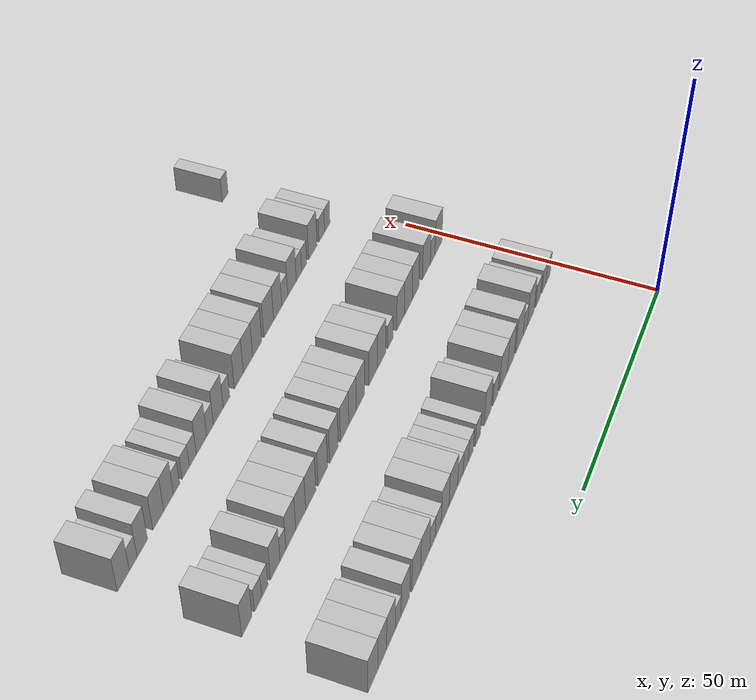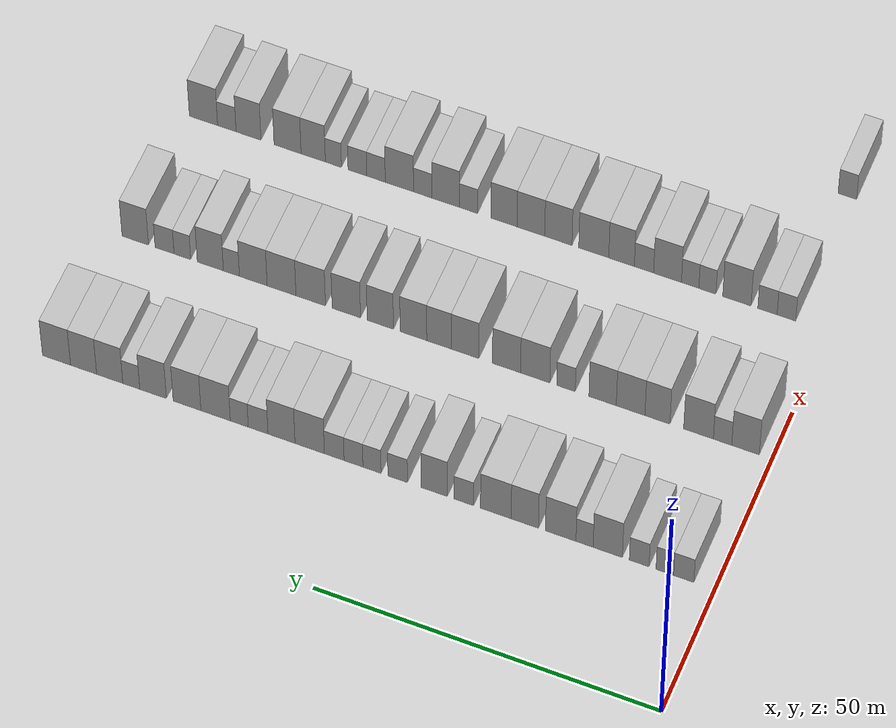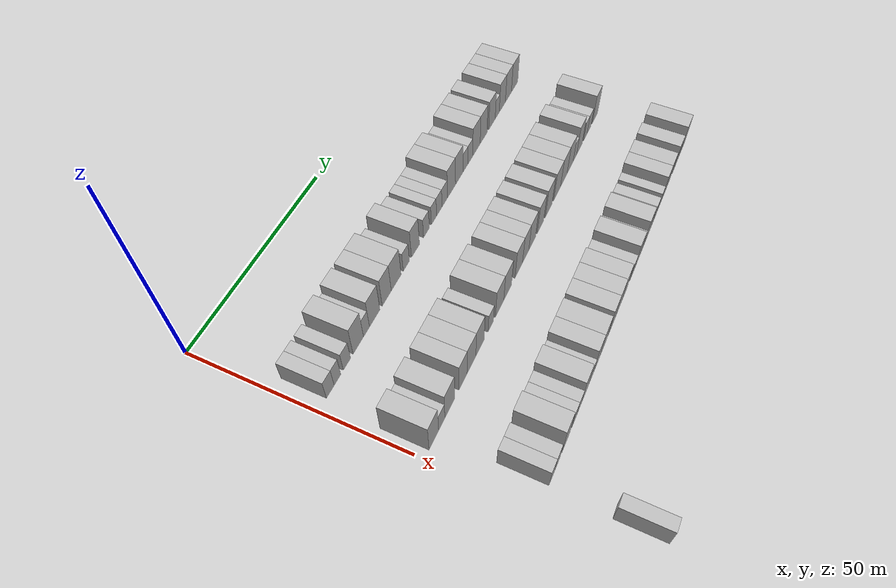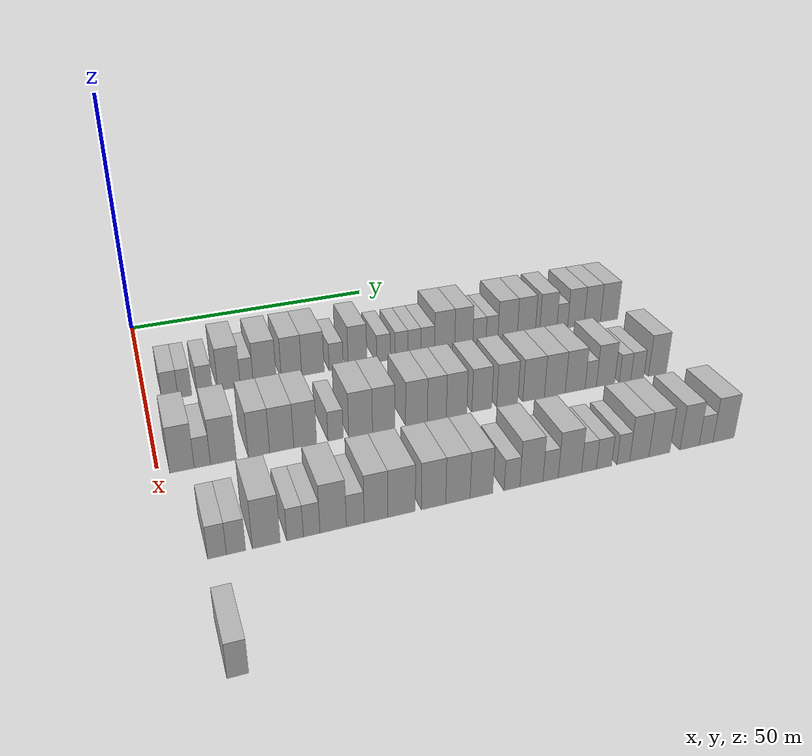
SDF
<sdf version="1.6">
 <world name="default">
  <model name="building_100">
   <static>1</static>
   <pose>25.0000 4.5090 0 0.000000 0.000000 0.000000</pose>
   <link name="link">
    <pose>0 0 3.00 0 0 0</pose>
    <collision name="collision"><geometry><box><size>10.0000 2.9204 6.0000</size></box></geometry></collision>
    <visual name="visual">
     <cast_shadows>0</cast_shadows>
     <geometry><box><size>10.0000 2.9204 6.0000</size></box></geometry>
     <material>
      <script>
       <uri>model://HANNAS_wall/materials/scripts</uri>
       <uri>model://HANNAS_wall/materials/textures</uri>
       <name>vrc/HANNAS_wall</name>
      </script>
     </material>
    </visual>
   </link>
  </model>
  <model name="building_101">
   <static>1</static>
   <pose>25.0000 7.2331 0 0.000000 0.000000 0.000000</pose>
   <link name="link">
    <pose>0 0 3.00 0 0 0</pose>
    <collision name="collision"><geometry><box><size>10.0000 2.5277 6.0000</size></box></geometry></collision>
    <visual name="visual">
     <cast_shadows>0</cast_shadows>
     <geometry><box><size>10.0000 2.5277 6.0000</size></box></geometry>
     <material>
      <script>
       <uri>model://HANNAS_wall/materials/scripts</uri>
       <uri>model://HANNAS_wall/materials/textures</uri>
       <name>vrc/HANNAS_wall</name>
      </script>
     </material>
    </visual>
   </link>
  </model>
  <model name="building_102">
   <static>1</static>
   <pose>25.0000 10.9208 0 0.000000 0.000000 0.000000</pose>
   <link name="link">
    <pose>0 0 3.00 0 0 0</pose>
    <collision name="collision"><geometry><box><size>10.0000 2.8477 6.0000</size></box></geometry></collision>
    <visual name="visual">
     <cast_shadows>0</cast_shadows>
     <geometry><box><size>10.0000 2.8477 6.0000</size></box></geometry>
     <material>
      <script>
       <uri>model://HANNAS_wall/materials/scripts</uri>
       <uri>model://HANNAS_wall/materials/textures</uri>
       <name>vrc/HANNAS_wall</name>
      </script>
     </material>
    </visual>
   </link>
  </model>
  <model name="building_103">
   <static>1</static>
   <pose>25.0000 15.4575 0 0.000000 0.000000 0.000000</pose>
   <link name="link">
    <pose>0 0 4.50 0 0 0</pose>
    <collision name="collision"><geometry><box><size>10.0000 4.2256 9.0000</size></box></geometry></collision>
    <visual name="visual">
     <cast_shadows>0</cast_shadows>
     <geometry><box><size>10.0000 4.2256 9.0000</size></box></geometry>
     <material>
      <script>
       <uri>model://HANNAS_wall/materials/scripts</uri>
       <uri>model://HANNAS_wall/materials/textures</uri>
       <name>vrc/HANNAS_wall</name>
      </script>
     </material>
    </visual>
   </link>
  </model>
  <model name="building_104">
   <static>1</static>
   <pose>25.0000 18.8111 0 0.000000 0.000000 0.000000</pose>
   <link name="link">
    <pose>0 0 3.00 0 0 0</pose>
    <collision name="collision"><geometry><box><size>10.0000 2.4817 6.0000</size></box></geometry></collision>
    <visual name="visual">
     <cast_shadows>0</cast_shadows>
     <geometry><box><size>10.0000 2.4817 6.0000</size></box></geometry>
     <material>
      <script>
       <uri>model://HANNAS_wall/materials/scripts</uri>
       <uri>model://HANNAS_wall/materials/textures</uri>
       <name>vrc/HANNAS_wall</name>
      </script>
     </material>
    </visual>
   </link>
  </model>
  <model name="building_105">
   <static>1</static>
   <pose>25.0000 22.2630 0 0.000000 0.000000 0.000000</pose>
   <link name="link">
    <pose>0 0 4.50 0 0 0</pose>
    <collision name="collision"><geometry><box><size>10.0000 4.4220 9.0000</size></box></geometry></collision>
    <visual name="visual">
     <cast_shadows>0</cast_shadows>
     <geometry><box><size>10.0000 4.4220 9.0000</size></box></geometry>
     <material>
      <script>
       <uri>model://HANNAS_wall/materials/scripts</uri>
       <uri>model://HANNAS_wall/materials/textures</uri>
       <name>vrc/HANNAS_wall</name>
      </script>
     </material>
    </visual>
   </link>
  </model>
  <model name="building_106">
   <static>1</static>
   <pose>25.0000 27.4596 0 0.000000 0.000000 0.000000</pose>
   <link name="link">
    <pose>0 0 4.50 0 0 0</pose>
    <collision name="collision"><geometry><box><size>10.0000 3.9713 9.0000</size></box></geometry></collision>
    <visual name="visual">
     <cast_shadows>0</cast_shadows>
     <geometry><box><size>10.0000 3.9713 9.0000</size></box></geometry>
     <material>
      <script>
       <uri>model://HANNAS_wall/materials/scripts</uri>
       <uri>model://HANNAS_wall/materials/textures</uri>
       <name>vrc/HANNAS_wall</name>
      </script>
     </material>
    </visual>
   </link>
  </model>
  <model name="building_107">
   <static>1</static>
   <pose>25.0000 31.6769 0 0.000000 0.000000 0.000000</pose>
   <link name="link">
    <pose>0 0 4.50 0 0 0</pose>
    <collision name="collision"><geometry><box><size>10.0000 4.4634 9.0000</size></box></geometry></collision>
    <visual name="visual">
     <cast_shadows>0</cast_shadows>
     <geometry><box><size>10.0000 4.4634 9.0000</size></box></geometry>
     <material>
      <script>
       <uri>model://HANNAS_wall/materials/scripts</uri>
       <uri>model://HANNAS_wall/materials/textures</uri>
       <name>vrc/HANNAS_wall</name>
      </script>
     </material>
    </visual>
   </link>
  </model>
  <model name="building_108">
   <static>1</static>
   <pose>25.0000 36.3281 0 0.000000 0.000000 0.000000</pose>
   <link name="link">
    <pose>0 0 3.00 0 0 0</pose>
    <collision name="collision"><geometry><box><size>10.0000 2.8389 6.0000</size></box></geometry></collision>
    <visual name="visual">
     <cast_shadows>0</cast_shadows>
     <geometry><box><size>10.0000 2.8389 6.0000</size></box></geometry>
     <material>
      <script>
       <uri>model://HANNAS_wall/materials/scripts</uri>
       <uri>model://HANNAS_wall/materials/textures</uri>
       <name>vrc/HANNAS_wall</name>
      </script>
     </material>
    </visual>
   </link>
  </model>
  <model name="building_109">
   <static>1</static>
   <pose>25.0000 40.6622 0 0.000000 0.000000 0.000000</pose>
   <link name="link">
    <pose>0 0 4.50 0 0 0</pose>
    <collision name="collision"><geometry><box><size>10.0000 3.8293 9.0000</size></box></geometry></collision>
    <visual name="visual">
     <cast_shadows>0</cast_shadows>
     <geometry><box><size>10.0000 3.8293 9.0000</size></box></geometry>
     <material>
      <script>
       <uri>model://HANNAS_wall/materials/scripts</uri>
       <uri>model://HANNAS_wall/materials/textures</uri>
       <name>vrc/HANNAS_wall</name>
      </script>
     </material>
    </visual>
   </link>
  </model>
  <model name="building_110">
   <static>1</static>
   <pose>25.0000 46.0149 0 0.000000 0.000000 0.000000</pose>
   <link name="link">
    <pose>0 0 3.00 0 0 0</pose>
    <collision name="collision"><geometry><box><size>10.0000 2.8761 6.0000</size></box></geometry></collision>
    <visual name="visual">
     <cast_shadows>0</cast_shadows>
     <geometry><box><size>10.0000 2.8761 6.0000</size></box></geometry>
     <material>
      <script>
       <uri>model://HANNAS_wall/materials/scripts</uri>
       <uri>model://HANNAS_wall/materials/textures</uri>
       <name>vrc/HANNAS_wall</name>
      </script>
     </material>
    </visual>
   </link>
  </model>
  <model name="building_111">
   <static>1</static>
   <pose>25.0000 49.7838 0 0.000000 0.000000 0.000000</pose>
   <link name="link">
    <pose>0 0 3.00 0 0 0</pose>
    <collision name="collision"><geometry><box><size>10.0000 2.6616 6.0000</size></box></geometry></collision>
    <visual name="visual">
     <cast_shadows>0</cast_shadows>
     <geometry><box><size>10.0000 2.6616 6.0000</size></box></geometry>
     <material>
      <script>
       <uri>model://HANNAS_wall/materials/scripts</uri>
       <uri>model://HANNAS_wall/materials/textures</uri>
       <name>vrc/HANNAS_wall</name>
      </script>
     </material>
    </visual>
   </link>
  </model>
  <model name="building_112">
   <static>1</static>
   <pose>25.0000 52.5020 0 0.000000 0.000000 0.000000</pose>
   <link name="link">
    <pose>0 0 3.00 0 0 0</pose>
    <collision name="collision"><geometry><box><size>10.0000 2.7749 6.0000</size></box></geometry></collision>
    <visual name="visual">
     <cast_shadows>0</cast_shadows>
     <geometry><box><size>10.0000 2.7749 6.0000</size></box></geometry>
     <material>
      <script>
       <uri>model://HANNAS_wall/materials/scripts</uri>
       <uri>model://HANNAS_wall/materials/textures</uri>
       <name>vrc/HANNAS_wall</name>
      </script>
     </material>
    </visual>
   </link>
  </model>
  <model name="building_113">
   <static>1</static>
   <pose>25.0000 55.3369 0 0.000000 0.000000 0.000000</pose>
   <link name="link">
    <pose>0 0 3.00 0 0 0</pose>
    <collision name="collision"><geometry><box><size>10.0000 2.8949 6.0000</size></box></geometry></collision>
    <visual name="visual">
     <cast_shadows>0</cast_shadows>
     <geometry><box><size>10.0000 2.8949 6.0000</size></box></geometry>
     <material>
      <script>
       <uri>model://HANNAS_wall/materials/scripts</uri>
       <uri>model://HANNAS_wall/materials/textures</uri>
       <name>vrc/HANNAS_wall</name>
      </script>
     </material>
    </visual>
   </link>
  </model>
  <model name="building_114">
   <static>1</static>
   <pose>25.0000 58.9504 0 0.000000 0.000000 0.000000</pose>
   <link name="link">
    <pose>0 0 4.50 0 0 0</pose>
    <collision name="collision"><geometry><box><size>10.0000 4.3320 9.0000</size></box></geometry></collision>
    <visual name="visual">
     <cast_shadows>0</cast_shadows>
     <geometry><box><size>10.0000 4.3320 9.0000</size></box></geometry>
     <material>
      <script>
       <uri>model://HANNAS_wall/materials/scripts</uri>
       <uri>model://HANNAS_wall/materials/textures</uri>
       <name>vrc/HANNAS_wall</name>
      </script>
     </material>
    </visual>
   </link>
  </model>
  <model name="building_115">
   <static>1</static>
   <pose>25.0000 63.1136 0 0.000000 0.000000 0.000000</pose>
   <link name="link">
    <pose>0 0 4.50 0 0 0</pose>
    <collision name="collision"><geometry><box><size>10.0000 3.9944 9.0000</size></box></geometry></collision>
    <visual name="visual">
     <cast_shadows>0</cast_shadows>
     <geometry><box><size>10.0000 3.9944 9.0000</size></box></geometry>
     <material>
      <script>
       <uri>model://HANNAS_wall/materials/scripts</uri>
       <uri>model://HANNAS_wall/materials/textures</uri>
       <name>vrc/HANNAS_wall</name>
      </script>
     </material>
    </visual>
   </link>
  </model>
  <model name="building_116">
   <static>1</static>
   <pose>25.0000 66.5701 0 0.000000 0.000000 0.000000</pose>
   <link name="link">
    <pose>0 0 3.00 0 0 0</pose>
    <collision name="collision"><geometry><box><size>10.0000 2.9185 6.0000</size></box></geometry></collision>
    <visual name="visual">
     <cast_shadows>0</cast_shadows>
     <geometry><box><size>10.0000 2.9185 6.0000</size></box></geometry>
     <material>
      <script>
       <uri>model://HANNAS_wall/materials/scripts</uri>
       <uri>model://HANNAS_wall/materials/textures</uri>
       <name>vrc/HANNAS_wall</name>
      </script>
     </material>
    </visual>
   </link>
  </model>
  <model name="building_117">
   <static>1</static>
   <pose>25.0000 69.3578 0 0.000000 0.000000 0.000000</pose>
   <link name="link">
    <pose>0 0 3.00 0 0 0</pose>
    <collision name="collision"><geometry><box><size>10.0000 2.6570 6.0000</size></box></geometry></collision>
    <visual name="visual">
     <cast_shadows>0</cast_shadows>
     <geometry><box><size>10.0000 2.6570 6.0000</size></box></geometry>
     <material>
      <script>
       <uri>model://HANNAS_wall/materials/scripts</uri>
       <uri>model://HANNAS_wall/materials/textures</uri>
       <name>vrc/HANNAS_wall</name>
      </script>
     </material>
    </visual>
   </link>
  </model>
  <model name="building_118">
   <static>1</static>
   <pose>25.0000 72.8697 0 0.000000 0.000000 0.000000</pose>
   <link name="link">
    <pose>0 0 4.50 0 0 0</pose>
    <collision name="collision"><geometry><box><size>10.0000 4.3668 9.0000</size></box></geometry></collision>
    <visual name="visual">
     <cast_shadows>0</cast_shadows>
     <geometry><box><size>10.0000 4.3668 9.0000</size></box></geometry>
     <material>
      <script>
       <uri>model://HANNAS_wall/materials/scripts</uri>
       <uri>model://HANNAS_wall/materials/textures</uri>
       <name>vrc/HANNAS_wall</name>
      </script>
     </material>
    </visual>
   </link>
  </model>
  <model name="building_119">
   <static>1</static>
   <pose>25.0000 77.1169 0 0.000000 0.000000 0.000000</pose>
   <link name="link">
    <pose>0 0 4.50 0 0 0</pose>
    <collision name="collision"><geometry><box><size>10.0000 4.1276 9.0000</size></box></geometry></collision>
    <visual name="visual">
     <cast_shadows>0</cast_shadows>
     <geometry><box><size>10.0000 4.1276 9.0000</size></box></geometry>
     <material>
      <script>
       <uri>model://HANNAS_wall/materials/scripts</uri>
       <uri>model://HANNAS_wall/materials/textures</uri>
       <name>vrc/HANNAS_wall</name>
      </script>
     </material>
    </visual>
   </link>
  </model>
  <model name="building_120">
   <static>1</static>
   <pose>25.0000 82.1685 0 0.000000 0.000000 0.000000</pose>
   <link name="link">
    <pose>0 0 4.50 0 0 0</pose>
    <collision name="collision"><geometry><box><size>10.0000 3.9755 9.0000</size></box></geometry></collision>
    <visual name="visual">
     <cast_shadows>0</cast_shadows>
     <geometry><box><size>10.0000 3.9755 9.0000</size></box></geometry>
     <material>
      <script>
       <uri>model://HANNAS_wall/materials/scripts</uri>
       <uri>model://HANNAS_wall/materials/textures</uri>
       <name>vrc/HANNAS_wall</name>
      </script>
     </material>
    </visual>
   </link>
  </model>
  <model name="building_121">
   <static>1</static>
   <pose>25.0000 85.4232 0 0.000000 0.000000 0.000000</pose>
   <link name="link">
    <pose>0 0 3.00 0 0 0</pose>
    <collision name="collision"><geometry><box><size>10.0000 2.5340 6.0000</size></box></geometry></collision>
    <visual name="visual">
     <cast_shadows>0</cast_shadows>
     <geometry><box><size>10.0000 2.5340 6.0000</size></box></geometry>
     <material>
      <script>
       <uri>model://HANNAS_wall/materials/scripts</uri>
       <uri>model://HANNAS_wall/materials/textures</uri>
       <name>vrc/HANNAS_wall</name>
      </script>
     </material>
    </visual>
   </link>
  </model>
  <model name="building_122">
   <static>1</static>
   <pose>25.0000 88.6442 0 0.000000 0.000000 0.000000</pose>
   <link name="link">
    <pose>0 0 4.50 0 0 0</pose>
    <collision name="collision"><geometry><box><size>10.0000 3.9080 9.0000</size></box></geometry></collision>
    <visual name="visual">
     <cast_shadows>0</cast_shadows>
     <geometry><box><size>10.0000 3.9080 9.0000</size></box></geometry>
     <material>
      <script>
       <uri>model://HANNAS_wall/materials/scripts</uri>
       <uri>model://HANNAS_wall/materials/textures</uri>
       <name>vrc/HANNAS_wall</name>
      </script>
     </material>
    </visual>
   </link>
  </model>
  <model name="building_123">
   <static>1</static>
   <pose>25.0000 92.5504 0 0.000000 0.000000 0.000000</pose>
   <link name="link">
    <pose>0 0 4.50 0 0 0</pose>
    <collision name="collision"><geometry><box><size>10.0000 3.9043 9.0000</size></box></geometry></collision>
    <visual name="visual">
     <cast_shadows>0</cast_shadows>
     <geometry><box><size>10.0000 3.9043 9.0000</size></box></geometry>
     <material>
      <script>
       <uri>model://HANNAS_wall/materials/scripts</uri>
       <uri>model://HANNAS_wall/materials/textures</uri>
       <name>vrc/HANNAS_wall</name>
      </script>
     </material>
    </visual>
   </link>
  </model>
  <model name="building_124">
   <static>1</static>
   <pose>25.0000 96.6010 0 0.000000 0.000000 0.000000</pose>
   <link name="link">
    <pose>0 0 4.50 0 0 0</pose>
    <collision name="collision"><geometry><box><size>10.0000 4.1969 9.0000</size></box></geometry></collision>
    <visual name="visual">
     <cast_shadows>0</cast_shadows>
     <geometry><box><size>10.0000 4.1969 9.0000</size></box></geometry>
     <material>
      <script>
       <uri>model://HANNAS_wall/materials/scripts</uri>
       <uri>model://HANNAS_wall/materials/textures</uri>
       <name>vrc/HANNAS_wall</name>
      </script>
     </material>
    </visual>
   </link>
  </model>
  <model name="building_302">
   <static>1</static>
   <pose>47.0000 3.9510 0 0.000000 0.000000 0.000000</pose>
   <link name="link">
    <pose>0 0 4.50 0 0 0</pose>
    <collision name="collision"><geometry><box><size>10.0000 4.0161 9.0000</size></box></geometry></collision>
    <visual name="visual">
     <cast_shadows>0</cast_shadows>
     <geometry><box><size>10.0000 4.0161 9.0000</size></box></geometry>
     <material>
      <script>
       <uri>model://HANNAS_wall/materials/scripts</uri>
       <uri>model://HANNAS_wall/materials/textures</uri>
       <name>vrc/HANNAS_wall</name>
      </script>
     </material>
    </visual>
   </link>
  </model>
  <model name="building_303">
   <static>1</static>
   <pose>47.0000 7.2938 0 0.000000 0.000000 0.000000</pose>
   <link name="link">
    <pose>0 0 3.00 0 0 0</pose>
    <collision name="collision"><geometry><box><size>10.0000 2.6695 6.0000</size></box></geometry></collision>
    <visual name="visual">
     <cast_shadows>0</cast_shadows>
     <geometry><box><size>10.0000 2.6695 6.0000</size></box></geometry>
     <material>
      <script>
       <uri>model://HANNAS_wall/materials/scripts</uri>
       <uri>model://HANNAS_wall/materials/textures</uri>
       <name>vrc/HANNAS_wall</name>
      </script>
     </material>
    </visual>
   </link>
  </model>
  <model name="building_304">
   <static>1</static>
   <pose>47.0000 10.7909 0 0.000000 0.000000 0.000000</pose>
   <link name="link">
    <pose>0 0 4.50 0 0 0</pose>
    <collision name="collision"><geometry><box><size>10.0000 4.3245 9.0000</size></box></geometry></collision>
    <visual name="visual">
     <cast_shadows>0</cast_shadows>
     <geometry><box><size>10.0000 4.3245 9.0000</size></box></geometry>
     <material>
      <script>
       <uri>model://HANNAS_wall/materials/scripts</uri>
       <uri>model://HANNAS_wall/materials/textures</uri>
       <name>vrc/HANNAS_wall</name>
      </script>
     </material>
    </visual>
   </link>
  </model>
  <model name="building_305">
   <static>1</static>
   <pose>47.0000 16.7808 0 0.000000 0.000000 0.000000</pose>
   <link name="link">
    <pose>0 0 4.50 0 0 0</pose>
    <collision name="collision"><geometry><box><size>10.0000 3.6554 9.0000</size></box></geometry></collision>
    <visual name="visual">
     <cast_shadows>0</cast_shadows>
     <geometry><box><size>10.0000 3.6554 9.0000</size></box></geometry>
     <material>
      <script>
       <uri>model://HANNAS_wall/materials/scripts</uri>
       <uri>model://HANNAS_wall/materials/textures</uri>
       <name>vrc/HANNAS_wall</name>
      </script>
     </material>
    </visual>
   </link>
  </model>
  <model name="building_306">
   <static>1</static>
   <pose>47.0000 20.7037 0 0.000000 0.000000 0.000000</pose>
   <link name="link">
    <pose>0 0 4.50 0 0 0</pose>
    <collision name="collision"><geometry><box><size>10.0000 4.1902 9.0000</size></box></geometry></collision>
    <visual name="visual">
     <cast_shadows>0</cast_shadows>
     <geometry><box><size>10.0000 4.1902 9.0000</size></box></geometry>
     <material>
      <script>
       <uri>model://HANNAS_wall/materials/scripts</uri>
       <uri>model://HANNAS_wall/materials/textures</uri>
       <name>vrc/HANNAS_wall</name>
      </script>
     </material>
    </visual>
   </link>
  </model>
  <model name="building_307">
   <static>1</static>
   <pose>47.0000 24.8076 0 0.000000 0.000000 0.000000</pose>
   <link name="link">
    <pose>0 0 4.50 0 0 0</pose>
    <collision name="collision"><geometry><box><size>10.0000 4.0177 9.0000</size></box></geometry></collision>
    <visual name="visual">
     <cast_shadows>0</cast_shadows>
     <geometry><box><size>10.0000 4.0177 9.0000</size></box></geometry>
     <material>
      <script>
       <uri>model://HANNAS_wall/materials/scripts</uri>
       <uri>model://HANNAS_wall/materials/textures</uri>
       <name>vrc/HANNAS_wall</name>
      </script>
     </material>
    </visual>
   </link>
  </model>
  <model name="building_308">
   <static>1</static>
   <pose>47.0000 30.1823 0 0.000000 0.000000 0.000000</pose>
   <link name="link">
    <pose>0 0 3.00 0 0 0</pose>
    <collision name="collision"><geometry><box><size>10.0000 2.7318 6.0000</size></box></geometry></collision>
    <visual name="visual">
     <cast_shadows>0</cast_shadows>
     <geometry><box><size>10.0000 2.7318 6.0000</size></box></geometry>
     <material>
      <script>
       <uri>model://HANNAS_wall/materials/scripts</uri>
       <uri>model://HANNAS_wall/materials/textures</uri>
       <name>vrc/HANNAS_wall</name>
      </script>
     </material>
    </visual>
   </link>
  </model>
  <model name="building_309">
   <static>1</static>
   <pose>47.0000 34.7094 0 0.000000 0.000000 0.000000</pose>
   <link name="link">
    <pose>0 0 4.50 0 0 0</pose>
    <collision name="collision"><geometry><box><size>10.0000 4.3224 9.0000</size></box></geometry></collision>
    <visual name="visual">
     <cast_shadows>0</cast_shadows>
     <geometry><box><size>10.0000 4.3224 9.0000</size></box></geometry>
     <material>
      <script>
       <uri>model://HANNAS_wall/materials/scripts</uri>
       <uri>model://HANNAS_wall/materials/textures</uri>
       <name>vrc/HANNAS_wall</name>
      </script>
     </material>
    </visual>
   </link>
  </model>
  <model name="building_310">
   <static>1</static>
   <pose>47.0000 38.9401 0 0.000000 0.000000 0.000000</pose>
   <link name="link">
    <pose>0 0 4.50 0 0 0</pose>
    <collision name="collision"><geometry><box><size>10.0000 4.1390 9.0000</size></box></geometry></collision>
    <visual name="visual">
     <cast_shadows>0</cast_shadows>
     <geometry><box><size>10.0000 4.1390 9.0000</size></box></geometry>
     <material>
      <script>
       <uri>model://HANNAS_wall/materials/scripts</uri>
       <uri>model://HANNAS_wall/materials/textures</uri>
       <name>vrc/HANNAS_wall</name>
      </script>
     </material>
    </visual>
   </link>
  </model>
  <model name="building_311">
   <static>1</static>
   <pose>47.0000 45.0663 0 0.000000 0.000000 0.000000</pose>
   <link name="link">
    <pose>0 0 4.50 0 0 0</pose>
    <collision name="collision"><geometry><box><size>10.0000 4.1134 9.0000</size></box></geometry></collision>
    <visual name="visual">
     <cast_shadows>0</cast_shadows>
     <geometry><box><size>10.0000 4.1134 9.0000</size></box></geometry>
     <material>
      <script>
       <uri>model://HANNAS_wall/materials/scripts</uri>
       <uri>model://HANNAS_wall/materials/textures</uri>
       <name>vrc/HANNAS_wall</name>
      </script>
     </material>
    </visual>
   </link>
  </model>
  <model name="building_312">
   <static>1</static>
   <pose>47.0000 48.9343 0 0.000000 0.000000 0.000000</pose>
   <link name="link">
    <pose>0 0 4.50 0 0 0</pose>
    <collision name="collision"><geometry><box><size>10.0000 3.6227 9.0000</size></box></geometry></collision>
    <visual name="visual">
     <cast_shadows>0</cast_shadows>
     <geometry><box><size>10.0000 3.6227 9.0000</size></box></geometry>
     <material>
      <script>
       <uri>model://HANNAS_wall/materials/scripts</uri>
       <uri>model://HANNAS_wall/materials/textures</uri>
       <name>vrc/HANNAS_wall</name>
      </script>
     </material>
    </visual>
   </link>
  </model>
  <model name="building_313">
   <static>1</static>
   <pose>47.0000 52.7229 0 0.000000 0.000000 0.000000</pose>
   <link name="link">
    <pose>0 0 4.50 0 0 0</pose>
    <collision name="collision"><geometry><box><size>10.0000 3.9545 9.0000</size></box></geometry></collision>
    <visual name="visual">
     <cast_shadows>0</cast_shadows>
     <geometry><box><size>10.0000 3.9545 9.0000</size></box></geometry>
     <material>
      <script>
       <uri>model://HANNAS_wall/materials/scripts</uri>
       <uri>model://HANNAS_wall/materials/textures</uri>
       <name>vrc/HANNAS_wall</name>
      </script>
     </material>
    </visual>
   </link>
  </model>
  <model name="building_314">
   <static>1</static>
   <pose>47.0000 57.6578 0 0.000000 0.000000 0.000000</pose>
   <link name="link">
    <pose>0 0 4.50 0 0 0</pose>
    <collision name="collision"><geometry><box><size>10.0000 3.9153 9.0000</size></box></geometry></collision>
    <visual name="visual">
     <cast_shadows>0</cast_shadows>
     <geometry><box><size>10.0000 3.9153 9.0000</size></box></geometry>
     <material>
      <script>
       <uri>model://HANNAS_wall/materials/scripts</uri>
       <uri>model://HANNAS_wall/materials/textures</uri>
       <name>vrc/HANNAS_wall</name>
      </script>
     </material>
    </visual>
   </link>
  </model>
  <model name="building_315">
   <static>1</static>
   <pose>47.0000 62.7289 0 0.000000 0.000000 0.000000</pose>
   <link name="link">
    <pose>0 0 4.50 0 0 0</pose>
    <collision name="collision"><geometry><box><size>10.0000 4.2270 9.0000</size></box></geometry></collision>
    <visual name="visual">
     <cast_shadows>0</cast_shadows>
     <geometry><box><size>10.0000 4.2270 9.0000</size></box></geometry>
     <material>
      <script>
       <uri>model://HANNAS_wall/materials/scripts</uri>
       <uri>model://HANNAS_wall/materials/textures</uri>
       <name>vrc/HANNAS_wall</name>
      </script>
     </material>
    </visual>
   </link>
  </model>
  <model name="building_316">
   <static>1</static>
   <pose>47.0000 68.0520 0 0.000000 0.000000 0.000000</pose>
   <link name="link">
    <pose>0 0 4.50 0 0 0</pose>
    <collision name="collision"><geometry><box><size>10.0000 4.4191 9.0000</size></box></geometry></collision>
    <visual name="visual">
     <cast_shadows>0</cast_shadows>
     <geometry><box><size>10.0000 4.4191 9.0000</size></box></geometry>
     <material>
      <script>
       <uri>model://HANNAS_wall/materials/scripts</uri>
       <uri>model://HANNAS_wall/materials/textures</uri>
       <name>vrc/HANNAS_wall</name>
      </script>
     </material>
    </visual>
   </link>
  </model>
  <model name="building_317">
   <static>1</static>
   <pose>47.0000 72.4213 0 0.000000 0.000000 0.000000</pose>
   <link name="link">
    <pose>0 0 4.50 0 0 0</pose>
    <collision name="collision"><geometry><box><size>10.0000 4.3195 9.0000</size></box></geometry></collision>
    <visual name="visual">
     <cast_shadows>0</cast_shadows>
     <geometry><box><size>10.0000 4.3195 9.0000</size></box></geometry>
     <material>
      <script>
       <uri>model://HANNAS_wall/materials/scripts</uri>
       <uri>model://HANNAS_wall/materials/textures</uri>
       <name>vrc/HANNAS_wall</name>
      </script>
     </material>
    </visual>
   </link>
  </model>
  <model name="building_318">
   <static>1</static>
   <pose>47.0000 76.6642 0 0.000000 0.000000 0.000000</pose>
   <link name="link">
    <pose>0 0 4.50 0 0 0</pose>
    <collision name="collision"><geometry><box><size>10.0000 4.1664 9.0000</size></box></geometry></collision>
    <visual name="visual">
     <cast_shadows>0</cast_shadows>
     <geometry><box><size>10.0000 4.1664 9.0000</size></box></geometry>
     <material>
      <script>
       <uri>model://HANNAS_wall/materials/scripts</uri>
       <uri>model://HANNAS_wall/materials/textures</uri>
       <name>vrc/HANNAS_wall</name>
      </script>
     </material>
    </visual>
   </link>
  </model>
  <model name="building_319">
   <static>1</static>
   <pose>47.0000 79.9550 0 0.000000 0.000000 0.000000</pose>
   <link name="link">
    <pose>0 0 3.00 0 0 0</pose>
    <collision name="collision"><geometry><box><size>10.0000 2.4151 6.0000</size></box></geometry></collision>
    <visual name="visual">
     <cast_shadows>0</cast_shadows>
     <geometry><box><size>10.0000 2.4151 6.0000</size></box></geometry>
     <material>
      <script>
       <uri>model://HANNAS_wall/materials/scripts</uri>
       <uri>model://HANNAS_wall/materials/textures</uri>
       <name>vrc/HANNAS_wall</name>
      </script>
     </material>
    </visual>
   </link>
  </model>
  <model name="building_320">
   <static>1</static>
   <pose>47.0000 83.1264 0 0.000000 0.000000 0.000000</pose>
   <link name="link">
    <pose>0 0 4.50 0 0 0</pose>
    <collision name="collision"><geometry><box><size>10.0000 3.9277 9.0000</size></box></geometry></collision>
    <visual name="visual">
     <cast_shadows>0</cast_shadows>
     <geometry><box><size>10.0000 3.9277 9.0000</size></box></geometry>
     <material>
      <script>
       <uri>model://HANNAS_wall/materials/scripts</uri>
       <uri>model://HANNAS_wall/materials/textures</uri>
       <name>vrc/HANNAS_wall</name>
      </script>
     </material>
    </visual>
   </link>
  </model>
  <model name="building_321">
   <static>1</static>
   <pose>47.0000 87.3472 0 0.000000 0.000000 0.000000</pose>
   <link name="link">
    <pose>0 0 3.00 0 0 0</pose>
    <collision name="collision"><geometry><box><size>10.0000 2.5139 6.0000</size></box></geometry></collision>
    <visual name="visual">
     <cast_shadows>0</cast_shadows>
     <geometry><box><size>10.0000 2.5139 6.0000</size></box></geometry>
     <material>
      <script>
       <uri>model://HANNAS_wall/materials/scripts</uri>
       <uri>model://HANNAS_wall/materials/textures</uri>
       <name>vrc/HANNAS_wall</name>
      </script>
     </material>
    </visual>
   </link>
  </model>
  <model name="building_322">
   <static>1</static>
   <pose>47.0000 90.0346 0 0.000000 0.000000 0.000000</pose>
   <link name="link">
    <pose>0 0 3.00 0 0 0</pose>
    <collision name="collision"><geometry><box><size>10.0000 2.8608 6.0000</size></box></geometry></collision>
    <visual name="visual">
     <cast_shadows>0</cast_shadows>
     <geometry><box><size>10.0000 2.8608 6.0000</size></box></geometry>
     <material>
      <script>
       <uri>model://HANNAS_wall/materials/scripts</uri>
       <uri>model://HANNAS_wall/materials/textures</uri>
       <name>vrc/HANNAS_wall</name>
      </script>
     </material>
    </visual>
   </link>
  </model>
  <model name="building_323">
   <static>1</static>
   <pose>47.0000 94.4660 0 0.000000 0.000000 0.000000</pose>
   <link name="link">
    <pose>0 0 4.50 0 0 0</pose>
    <collision name="collision"><geometry><box><size>10.0000 4.0020 9.0000</size></box></geometry></collision>
    <visual name="visual">
     <cast_shadows>0</cast_shadows>
     <geometry><box><size>10.0000 4.0020 9.0000</size></box></geometry>
     <material>
      <script>
       <uri>model://HANNAS_wall/materials/scripts</uri>
       <uri>model://HANNAS_wall/materials/textures</uri>
       <name>vrc/HANNAS_wall</name>
      </script>
     </material>
    </visual>
   </link>
  </model>
  <model name="building_492">
   <static>1</static>
   <pose>69.0000 6.2291 0 0.000000 0.000000 0.000000</pose>
   <link name="link">
    <pose>0 0 3.00 0 0 0</pose>
    <collision name="collision"><geometry><box><size>10.0000 2.7392 6.0000</size></box></geometry></collision>
    <visual name="visual">
     <cast_shadows>0</cast_shadows>
     <geometry><box><size>10.0000 2.7392 6.0000</size></box></geometry>
     <material>
      <script>
       <uri>model://HANNAS_wall/materials/scripts</uri>
       <uri>model://HANNAS_wall/materials/textures</uri>
       <name>vrc/HANNAS_wall</name>
      </script>
     </material>
    </visual>
   </link>
  </model>
  <model name="building_493">
   <static>1</static>
   <pose>69.0000 9.0151 0 0.000000 0.000000 0.000000</pose>
   <link name="link">
    <pose>0 0 3.00 0 0 0</pose>
    <collision name="collision"><geometry><box><size>10.0000 2.8328 6.0000</size></box></geometry></collision>
    <visual name="visual">
     <cast_shadows>0</cast_shadows>
     <geometry><box><size>10.0000 2.8328 6.0000</size></box></geometry>
     <material>
      <script>
       <uri>model://HANNAS_wall/materials/scripts</uri>
       <uri>model://HANNAS_wall/materials/textures</uri>
       <name>vrc/HANNAS_wall</name>
      </script>
     </material>
    </visual>
   </link>
  </model>
  <model name="building_494">
   <static>1</static>
   <pose>69.0000 13.5201 0 0.000000 0.000000 0.000000</pose>
   <link name="link">
    <pose>0 0 4.50 0 0 0</pose>
    <collision name="collision"><geometry><box><size>10.0000 4.1774 9.0000</size></box></geometry></collision>
    <visual name="visual">
     <cast_shadows>0</cast_shadows>
     <geometry><box><size>10.0000 4.1774 9.0000</size></box></geometry>
     <material>
      <script>
       <uri>model://HANNAS_wall/materials/scripts</uri>
       <uri>model://HANNAS_wall/materials/textures</uri>
       <name>vrc/HANNAS_wall</name>
      </script>
     </material>
    </visual>
   </link>
  </model>
  <model name="building_495">
   <static>1</static>
   <pose>69.0000 17.8750 0 0.000000 0.000000 0.000000</pose>
   <link name="link">
    <pose>0 0 3.00 0 0 0</pose>
    <collision name="collision"><geometry><box><size>10.0000 2.5324 6.0000</size></box></geometry></collision>
    <visual name="visual">
     <cast_shadows>0</cast_shadows>
     <geometry><box><size>10.0000 2.5324 6.0000</size></box></geometry>
     <material>
      <script>
       <uri>model://HANNAS_wall/materials/scripts</uri>
       <uri>model://HANNAS_wall/materials/textures</uri>
       <name>vrc/HANNAS_wall</name>
      </script>
     </material>
    </visual>
   </link>
  </model>
  <model name="building_496">
   <static>1</static>
   <pose>69.0000 20.4262 0 0.000000 0.000000 0.000000</pose>
   <link name="link">
    <pose>0 0 3.00 0 0 0</pose>
    <collision name="collision"><geometry><box><size>10.0000 2.5700 6.0000</size></box></geometry></collision>
    <visual name="visual">
     <cast_shadows>0</cast_shadows>
     <geometry><box><size>10.0000 2.5700 6.0000</size></box></geometry>
     <material>
      <script>
       <uri>model://HANNAS_wall/materials/scripts</uri>
       <uri>model://HANNAS_wall/materials/textures</uri>
       <name>vrc/HANNAS_wall</name>
      </script>
     </material>
    </visual>
   </link>
  </model>
  <model name="building_497">
   <static>1</static>
   <pose>69.0000 23.7772 0 0.000000 0.000000 0.000000</pose>
   <link name="link">
    <pose>0 0 4.50 0 0 0</pose>
    <collision name="collision"><geometry><box><size>10.0000 4.1319 9.0000</size></box></geometry></collision>
    <visual name="visual">
     <cast_shadows>0</cast_shadows>
     <geometry><box><size>10.0000 4.1319 9.0000</size></box></geometry>
     <material>
      <script>
       <uri>model://HANNAS_wall/materials/scripts</uri>
       <uri>model://HANNAS_wall/materials/textures</uri>
       <name>vrc/HANNAS_wall</name>
      </script>
     </material>
    </visual>
   </link>
  </model>
  <model name="building_498">
   <static>1</static>
   <pose>69.0000 27.2671 0 0.000000 0.000000 0.000000</pose>
   <link name="link">
    <pose>0 0 3.00 0 0 0</pose>
    <collision name="collision"><geometry><box><size>10.0000 2.8479 6.0000</size></box></geometry></collision>
    <visual name="visual">
     <cast_shadows>0</cast_shadows>
     <geometry><box><size>10.0000 2.8479 6.0000</size></box></geometry>
     <material>
      <script>
       <uri>model://HANNAS_wall/materials/scripts</uri>
       <uri>model://HANNAS_wall/materials/textures</uri>
       <name>vrc/HANNAS_wall</name>
      </script>
     </material>
    </visual>
   </link>
  </model>
  <model name="building_499">
   <static>1</static>
   <pose>69.0000 30.5974 0 0.000000 0.000000 0.000000</pose>
   <link name="link">
    <pose>0 0 4.50 0 0 0</pose>
    <collision name="collision"><geometry><box><size>10.0000 3.8127 9.0000</size></box></geometry></collision>
    <visual name="visual">
     <cast_shadows>0</cast_shadows>
     <geometry><box><size>10.0000 3.8127 9.0000</size></box></geometry>
     <material>
      <script>
       <uri>model://HANNAS_wall/materials/scripts</uri>
       <uri>model://HANNAS_wall/materials/textures</uri>
       <name>vrc/HANNAS_wall</name>
      </script>
     </material>
    </visual>
   </link>
  </model>
  <model name="building_500">
   <static>1</static>
   <pose>69.0000 34.7365 0 0.000000 0.000000 0.000000</pose>
   <link name="link">
    <pose>0 0 4.50 0 0 0</pose>
    <collision name="collision"><geometry><box><size>10.0000 4.4654 9.0000</size></box></geometry></collision>
    <visual name="visual">
     <cast_shadows>0</cast_shadows>
     <geometry><box><size>10.0000 4.4654 9.0000</size></box></geometry>
     <material>
      <script>
       <uri>model://HANNAS_wall/materials/scripts</uri>
       <uri>model://HANNAS_wall/materials/textures</uri>
       <name>vrc/HANNAS_wall</name>
      </script>
     </material>
    </visual>
   </link>
  </model>
  <model name="building_501">
   <static>1</static>
   <pose>69.0000 40.0099 0 0.000000 0.000000 0.000000</pose>
   <link name="link">
    <pose>0 0 4.50 0 0 0</pose>
    <collision name="collision"><geometry><box><size>10.0000 4.0813 9.0000</size></box></geometry></collision>
    <visual name="visual">
     <cast_shadows>0</cast_shadows>
     <geometry><box><size>10.0000 4.0813 9.0000</size></box></geometry>
     <material>
      <script>
       <uri>model://HANNAS_wall/materials/scripts</uri>
       <uri>model://HANNAS_wall/materials/textures</uri>
       <name>vrc/HANNAS_wall</name>
      </script>
     </material>
    </visual>
   </link>
  </model>
  <model name="building_502">
   <static>1</static>
   <pose>69.0000 44.1188 0 0.000000 0.000000 0.000000</pose>
   <link name="link">
    <pose>0 0 4.50 0 0 0</pose>
    <collision name="collision"><geometry><box><size>10.0000 4.1366 9.0000</size></box></geometry></collision>
    <visual name="visual">
     <cast_shadows>0</cast_shadows>
     <geometry><box><size>10.0000 4.1366 9.0000</size></box></geometry>
     <material>
      <script>
       <uri>model://HANNAS_wall/materials/scripts</uri>
       <uri>model://HANNAS_wall/materials/textures</uri>
       <name>vrc/HANNAS_wall</name>
      </script>
     </material>
    </visual>
   </link>
  </model>
  <model name="building_503">
   <static>1</static>
   <pose>69.0000 48.1413 0 0.000000 0.000000 0.000000</pose>
   <link name="link">
    <pose>0 0 4.50 0 0 0</pose>
    <collision name="collision"><geometry><box><size>10.0000 3.9084 9.0000</size></box></geometry></collision>
    <visual name="visual">
     <cast_shadows>0</cast_shadows>
     <geometry><box><size>10.0000 3.9084 9.0000</size></box></geometry>
     <material>
      <script>
       <uri>model://HANNAS_wall/materials/scripts</uri>
       <uri>model://HANNAS_wall/materials/textures</uri>
       <name>vrc/HANNAS_wall</name>
      </script>
     </material>
    </visual>
   </link>
  </model>
  <model name="building_504">
   <static>1</static>
   <pose>69.0000 53.4754 0 0.000000 0.000000 0.000000</pose>
   <link name="link">
    <pose>0 0 3.00 0 0 0</pose>
    <collision name="collision"><geometry><box><size>10.0000 2.7599 6.0000</size></box></geometry></collision>
    <visual name="visual">
     <cast_shadows>0</cast_shadows>
     <geometry><box><size>10.0000 2.7599 6.0000</size></box></geometry>
     <material>
      <script>
       <uri>model://HANNAS_wall/materials/scripts</uri>
       <uri>model://HANNAS_wall/materials/textures</uri>
       <name>vrc/HANNAS_wall</name>
      </script>
     </material>
    </visual>
   </link>
  </model>
  <model name="building_505">
   <static>1</static>
   <pose>69.0000 56.9164 0 0.000000 0.000000 0.000000</pose>
   <link name="link">
    <pose>0 0 4.50 0 0 0</pose>
    <collision name="collision"><geometry><box><size>10.0000 4.1222 9.0000</size></box></geometry></collision>
    <visual name="visual">
     <cast_shadows>0</cast_shadows>
     <geometry><box><size>10.0000 4.1222 9.0000</size></box></geometry>
     <material>
      <script>
       <uri>model://HANNAS_wall/materials/scripts</uri>
       <uri>model://HANNAS_wall/materials/textures</uri>
       <name>vrc/HANNAS_wall</name>
      </script>
     </material>
    </visual>
   </link>
  </model>
  <model name="building_506">
   <static>1</static>
   <pose>69.0000 60.3576 0 0.000000 0.000000 0.000000</pose>
   <link name="link">
    <pose>0 0 3.00 0 0 0</pose>
    <collision name="collision"><geometry><box><size>10.0000 2.7600 6.0000</size></box></geometry></collision>
    <visual name="visual">
     <cast_shadows>0</cast_shadows>
     <geometry><box><size>10.0000 2.7600 6.0000</size></box></geometry>
     <material>
      <script>
       <uri>model://HANNAS_wall/materials/scripts</uri>
       <uri>model://HANNAS_wall/materials/textures</uri>
       <name>vrc/HANNAS_wall</name>
      </script>
     </material>
    </visual>
   </link>
  </model>
  <model name="building_507">
   <static>1</static>
   <pose>69.0000 63.8714 0 0.000000 0.000000 0.000000</pose>
   <link name="link">
    <pose>0 0 4.50 0 0 0</pose>
    <collision name="collision"><geometry><box><size>10.0000 4.2677 9.0000</size></box></geometry></collision>
    <visual name="visual">
     <cast_shadows>0</cast_shadows>
     <geometry><box><size>10.0000 4.2677 9.0000</size></box></geometry>
     <material>
      <script>
       <uri>model://HANNAS_wall/materials/scripts</uri>
       <uri>model://HANNAS_wall/materials/textures</uri>
       <name>vrc/HANNAS_wall</name>
      </script>
     </material>
    </visual>
   </link>
  </model>
  <model name="building_508">
   <static>1</static>
   <pose>69.0000 67.4013 0 0.000000 0.000000 0.000000</pose>
   <link name="link">
    <pose>0 0 3.00 0 0 0</pose>
    <collision name="collision"><geometry><box><size>10.0000 2.7920 6.0000</size></box></geometry></collision>
    <visual name="visual">
     <cast_shadows>0</cast_shadows>
     <geometry><box><size>10.0000 2.7920 6.0000</size></box></geometry>
     <material>
      <script>
       <uri>model://HANNAS_wall/materials/scripts</uri>
       <uri>model://HANNAS_wall/materials/textures</uri>
       <name>vrc/HANNAS_wall</name>
      </script>
     </material>
    </visual>
   </link>
  </model>
  <model name="building_509">
   <static>1</static>
   <pose>69.0000 70.2168 0 0.000000 0.000000 0.000000</pose>
   <link name="link">
    <pose>0 0 3.00 0 0 0</pose>
    <collision name="collision"><geometry><box><size>10.0000 2.8389 6.0000</size></box></geometry></collision>
    <visual name="visual">
     <cast_shadows>0</cast_shadows>
     <geometry><box><size>10.0000 2.8389 6.0000</size></box></geometry>
     <material>
      <script>
       <uri>model://HANNAS_wall/materials/scripts</uri>
       <uri>model://HANNAS_wall/materials/textures</uri>
       <name>vrc/HANNAS_wall</name>
      </script>
     </material>
    </visual>
   </link>
  </model>
  <model name="building_510">
   <static>1</static>
   <pose>69.0000 73.8586 0 0.000000 0.000000 0.000000</pose>
   <link name="link">
    <pose>0 0 3.00 0 0 0</pose>
    <collision name="collision"><geometry><box><size>10.0000 2.4447 6.0000</size></box></geometry></collision>
    <visual name="visual">
     <cast_shadows>0</cast_shadows>
     <geometry><box><size>10.0000 2.4447 6.0000</size></box></geometry>
     <material>
      <script>
       <uri>model://HANNAS_wall/materials/scripts</uri>
       <uri>model://HANNAS_wall/materials/textures</uri>
       <name>vrc/HANNAS_wall</name>
      </script>
     </material>
    </visual>
   </link>
  </model>
  <model name="building_511">
   <static>1</static>
   <pose>69.0000 76.9229 0 0.000000 0.000000 0.000000</pose>
   <link name="link">
    <pose>0 0 4.50 0 0 0</pose>
    <collision name="collision"><geometry><box><size>10.0000 3.6838 9.0000</size></box></geometry></collision>
    <visual name="visual">
     <cast_shadows>0</cast_shadows>
     <geometry><box><size>10.0000 3.6838 9.0000</size></box></geometry>
     <material>
      <script>
       <uri>model://HANNAS_wall/materials/scripts</uri>
       <uri>model://HANNAS_wall/materials/textures</uri>
       <name>vrc/HANNAS_wall</name>
      </script>
     </material>
    </visual>
   </link>
  </model>
  <model name="building_512">
   <static>1</static>
   <pose>69.0000 80.8176 0 0.000000 0.000000 0.000000</pose>
   <link name="link">
    <pose>0 0 4.50 0 0 0</pose>
    <collision name="collision"><geometry><box><size>10.0000 4.1057 9.0000</size></box></geometry></collision>
    <visual name="visual">
     <cast_shadows>0</cast_shadows>
     <geometry><box><size>10.0000 4.1057 9.0000</size></box></geometry>
     <material>
      <script>
       <uri>model://HANNAS_wall/materials/scripts</uri>
       <uri>model://HANNAS_wall/materials/textures</uri>
       <name>vrc/HANNAS_wall</name>
      </script>
     </material>
    </visual>
   </link>
  </model>
  <model name="building_513">
   <static>1</static>
   <pose>69.0000 86.7744 0 0.000000 0.000000 0.000000</pose>
   <link name="link">
    <pose>0 0 4.50 0 0 0</pose>
    <collision name="collision"><geometry><box><size>10.0000 3.8080 9.0000</size></box></geometry></collision>
    <visual name="visual">
     <cast_shadows>0</cast_shadows>
     <geometry><box><size>10.0000 3.8080 9.0000</size></box></geometry>
     <material>
      <script>
       <uri>model://HANNAS_wall/materials/scripts</uri>
       <uri>model://HANNAS_wall/materials/textures</uri>
       <name>vrc/HANNAS_wall</name>
      </script>
     </material>
    </visual>
   </link>
  </model>
  <model name="building_514">
   <static>1</static>
   <pose>69.0000 90.0853 0 0.000000 0.000000 0.000000</pose>
   <link name="link">
    <pose>0 0 3.00 0 0 0</pose>
    <collision name="collision"><geometry><box><size>10.0000 2.8137 6.0000</size></box></geometry></collision>
    <visual name="visual">
     <cast_shadows>0</cast_shadows>
     <geometry><box><size>10.0000 2.8137 6.0000</size></box></geometry>
     <material>
      <script>
       <uri>model://HANNAS_wall/materials/scripts</uri>
       <uri>model://HANNAS_wall/materials/textures</uri>
       <name>vrc/HANNAS_wall</name>
      </script>
     </material>
    </visual>
   </link>
  </model>
  <model name="building_515">
   <static>1</static>
   <pose>69.0000 93.6471 0 0.000000 0.000000 0.000000</pose>
   <link name="link">
    <pose>0 0 4.50 0 0 0</pose>
    <collision name="collision"><geometry><box><size>10.0000 4.3099 9.0000</size></box></geometry></collision>
    <visual name="visual">
     <cast_shadows>0</cast_shadows>
     <geometry><box><size>10.0000 4.3099 9.0000</size></box></geometry>
     <material>
      <script>
       <uri>model://HANNAS_wall/materials/scripts</uri>
       <uri>model://HANNAS_wall/materials/textures</uri>
       <name>vrc/HANNAS_wall</name>
      </script>
     </material>
    </visual>
   </link>
  </model>
  <model name="building_687">
   <static>1</static>
   <pose>91.0000 5.3623 0 0.000000 0.000000 0.000000</pose>
   <link name="link">
    <pose>0 0 3.00 0 0 0</pose>
    <collision name="collision"><geometry><box><size>10.0000 2.7520 6.0000</size></box></geometry></collision>
    <visual name="visual">
     <cast_shadows>0</cast_shadows>
     <geometry><box><size>10.0000 2.7520 6.0000</size></box></geometry>
     <material>
      <script>
       <uri>model://HANNAS_wall/materials/scripts</uri>
       <uri>model://HANNAS_wall/materials/textures</uri>
       <name>vrc/HANNAS_wall</name>
      </script>
     </material>
    </visual>
   </link>
  </model>
 </world>
</sdf>
